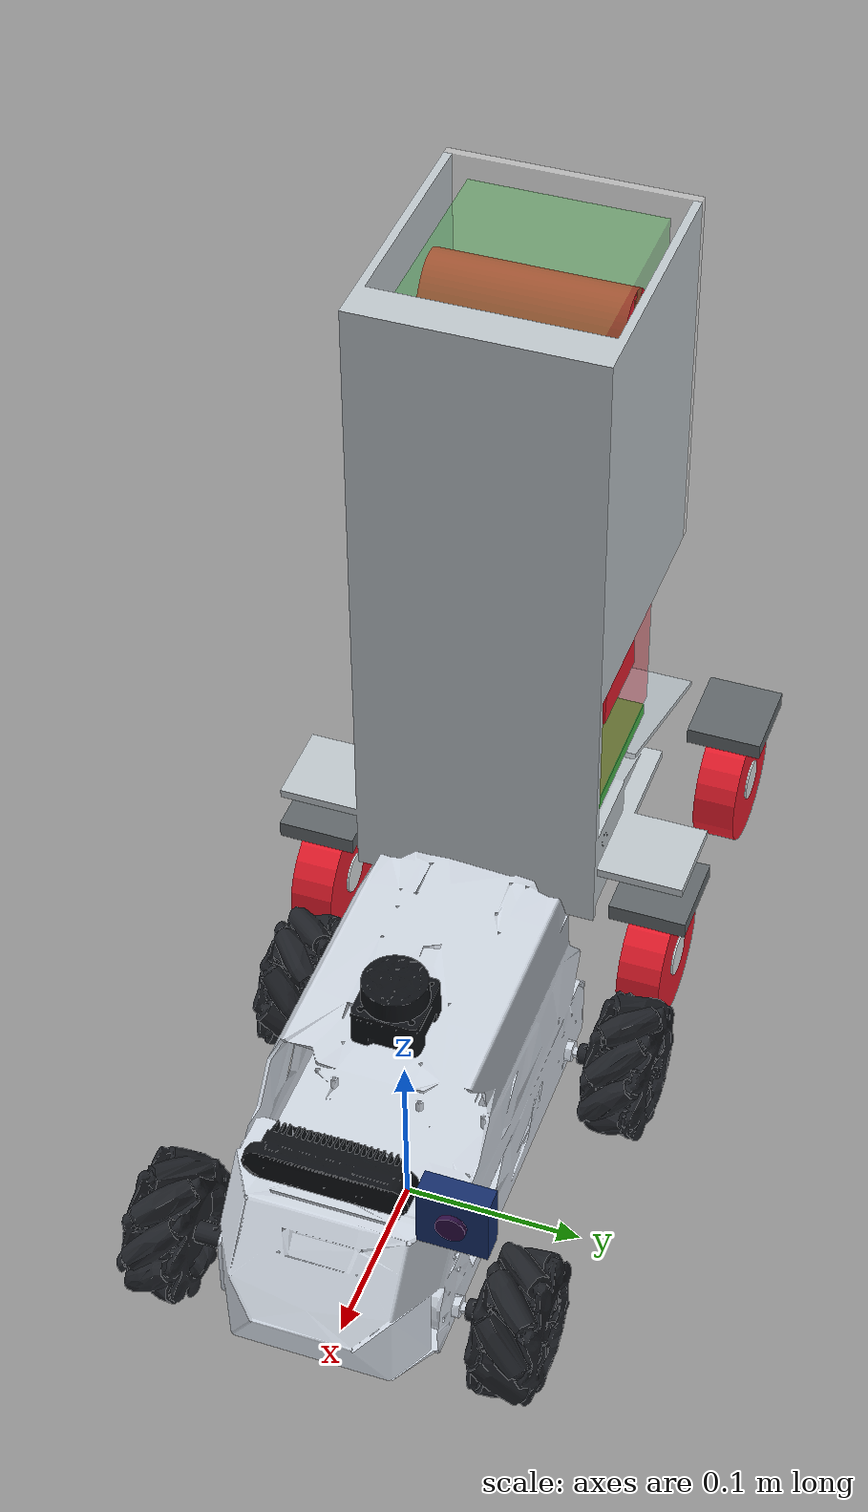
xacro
<?xml version="1.0"?>
<robot
  xmlns:xacro="http://www.ros.org/wiki/xacro"
  xmlns:ignition="http://ignitionrobotics.org/schema"
  name="hazard_guard_m1">
  <xacro:arg name="simulation_mode" default="kinematic" />
  <xacro:arg name="visualize_sensors" default="false" />
  <xacro:arg name="include_dispenser" default="true" />
  <xacro:arg name="dispenser_mass" default="1.2" />
  <xacro:arg name="thermal_width" default="160" />
  <xacro:arg name="thermal_height" default="120" />
  <xacro:arg name="thermal_update_rate" default="8.7" />
  <xacro:arg name="thermal_horizontal_fov" default="0.994837674" />
  <xacro:arg name="thermal_clip_near" default="0.05" />
  <xacro:arg name="thermal_clip_far" default="5.0" />
  <xacro:arg name="thermal_mount_x" default="0.106871" />
  <xacro:arg name="thermal_mount_y" default="0.068" />
  <xacro:arg name="thermal_mount_z" default="0.106136" />
  <xacro:arg name="thermal_mount_roll" default="0" />
  <xacro:arg name="thermal_mount_pitch" default="0" />
  <xacro:arg name="thermal_mount_yaw" default="0" />
  <xacro:arg name="thermal_optical_x" default="0.009" />
  <xacro:arg name="thermal_optical_y" default="0" />
  <xacro:arg name="thermal_optical_z" default="0" />
  <xacro:arg name="thermal_optical_roll" default="-1.57079632679" />
  <xacro:arg name="thermal_optical_pitch" default="0" />
  <xacro:arg name="thermal_optical_yaw" default="-1.57079632679" />
  <xacro:property name="simulation_mode" value="$(arg simulation_mode)" />
  <xacro:property name="visualize_sensors" value="$(arg visualize_sensors)" />
  <xacro:property name="dispenser_requested_mass" value="$(arg dispenser_mass)" />
  <xacro:property name="thermal_width" value="$(arg thermal_width)" />
  <xacro:property name="thermal_height" value="$(arg thermal_height)" />
  <xacro:property name="thermal_update_rate" value="$(arg thermal_update_rate)" />
  <xacro:property name="thermal_horizontal_fov" value="$(arg thermal_horizontal_fov)" />
  <xacro:property name="thermal_clip_near" value="$(arg thermal_clip_near)" />
  <xacro:property name="thermal_clip_far" value="$(arg thermal_clip_far)" />

  <xacro:property name="wheel_radius" value="0.0400" />
  <xacro:property name="wheel_width" value="0.0467" />
  <xacro:property name="front_wheel_x" value="0.092971" />
  <xacro:property name="rear_wheel_x" value="-0.092992" />
  <xacro:property name="left_wheel_y" value="0.08425" />
  <xacro:property name="right_wheel_y" value="-0.08425" />
  <xacro:property name="wheel_center_z" value="0.01249" />
  <xacro:property name="base_ground_offset" value="0.0276" />
  <xacro:property name="stock_mass" value="2.74" />
  <!-- Provisional TMC160B board-level mass from the current product-family
       brochure. Verify the delivered enclosure and bracket before the hardware
       dynamics baseline. -->
  <xacro:property name="thermal_mass" value="0.052" />
  <xacro:if value="$(arg include_dispenser)">
    <xacro:property
      name="installed_dispenser_mass"
      value="${dispenser_requested_mass}"
      scope="global" />
    <xacro:property
      name="installed_dispenser_yaw_inertia"
      value="${0.0951 * dispenser_requested_mass / 1.2}"
      scope="global" />
    <!-- The rear structure blocks about 71 degrees. A small edge/noise margin
         makes the simulated self-mask 77 degrees in total. -->
    <xacro:property name="lidar_samples" value="283" scope="global" />
    <xacro:property name="lidar_min_angle" value="-2.470" scope="global" />
    <xacro:property name="lidar_max_angle" value="2.470" scope="global" />
  </xacro:if>
  <xacro:unless value="$(arg include_dispenser)">
    <xacro:property name="installed_dispenser_mass" value="0.0" scope="global" />
    <xacro:property name="installed_dispenser_yaw_inertia" value="0.0" scope="global" />
    <xacro:property name="lidar_samples" value="360" scope="global" />
    <xacro:property name="lidar_min_angle" value="-3.14159265" scope="global" />
    <xacro:property name="lidar_max_angle" value="3.14159265" scope="global" />
  </xacro:unless>
  <xacro:property
    name="model_mass"
    value="${stock_mass + thermal_mass + installed_dispenser_mass}" />
  <xacro:property
    name="model_yaw_inertia"
    value="${0.0194 + installed_dispenser_yaw_inertia}" />
  <xacro:property name="base_mass" value="2.2939" />
  <xacro:property name="dispenser_body_lift" value="0.0600" />
  <xacro:property name="dispenser_caster_radius" value="0.0381" />
  <xacro:property name="dispenser_caster_width" value="0.0250" />
  <!-- Keep the sensor's real near range; the blocked rear sector is excluded
       geometrically instead of being published as a false 0.137 m obstacle. -->
  <xacro:property name="lidar_min_range" value="0.120" />

  <material name="m1_silver"><color rgba="0.82 0.85 0.89 1" /></material>
  <material name="m1_black"><color rgba="0.055 0.065 0.08 1" /></material>
  <material name="m1_wheel"><color rgba="0.12 0.13 0.15 1" /></material>
  <material name="thermal_blue"><color rgba="0.08 0.18 0.42 1" /></material>
  <material name="thermal_lens"><color rgba="0.18 0.05 0.26 1" /></material>
  <material name="dispenser_amber_translucent"><color rgba="1.0 0.866667 0.101961 0.4" /></material>
  <material name="dispenser_green_translucent"><color rgba="0.27451 0.717647 0.286275 0.4" /></material>
  <material name="dispenser_white_translucent"><color rgba="0.980392 0.980392 0.980392 0.4" /></material>
  <material name="dispenser_red_translucent"><color rgba="0.913725 0.113725 0.176471 0.4" /></material>
  <material name="dispenser_light_gray"><color rgba="0.74902 0.780392 0.8 1" /></material>
  <material name="dispenser_off_white"><color rgba="0.866667 0.886275 0.894118 1" /></material>
  <material name="dispenser_red"><color rgba="0.913725 0.113725 0.176471 1" /></material>
  <material name="dispenser_blue"><color rgba="0.0 0.623529 0.843137 1" /></material>
  <material name="dispenser_green"><color rgba="0.27451 0.717647 0.286275 1" /></material>
  <material name="dispenser_mid_gray"><color rgba="0.380392 0.403922 0.415686 1" /></material>

  <xacro:macro name="dispenser_mesh" params="name filename material">
    <visual name="${name}">
      <origin xyz="0 0 ${dispenser_body_lift}" />
      <geometry>
        <mesh filename="package://hazard_guard_simulation/meshes/yahboom_m1/${filename}" />
      </geometry>
      <material name="${material}" />
    </visual>
  </xacro:macro>

  <xacro:macro name="dispenser_caster" params="name x y">
    <visual name="${name}_wheel">
      <origin xyz="${x} ${y} ${dispenser_caster_radius - base_ground_offset}" rpy="1.57079632679 0 0" />
      <geometry>
        <cylinder radius="${dispenser_caster_radius}" length="${dispenser_caster_width}" />
      </geometry>
      <material name="dispenser_red" />
    </visual>
    <visual name="${name}_hub">
      <origin xyz="${x} ${y} ${dispenser_caster_radius - base_ground_offset}" rpy="1.57079632679 0 0" />
      <geometry><cylinder radius="0.012" length="0.027" /></geometry>
      <material name="dispenser_off_white" />
    </visual>
    <visual name="${name}_mount">
      <origin xyz="${x} ${y} ${0.086 - base_ground_offset}" />
      <geometry><box size="0.050 0.045 0.010" /></geometry>
      <material name="dispenser_mid_gray" />
    </visual>
  </xacro:macro>

  <link name="base_footprint" />
  <joint name="base_footprint_joint" type="fixed">
    <parent link="base_footprint" />
    <child link="base_link" />
    <origin xyz="0 0 ${base_ground_offset}" />
  </joint>

  <link name="base_link">
    <inertial>
      <origin xyz="0.01417 0 0.062" />
      <mass value="${base_mass}" />
      <inertia
        ixx="0.00849" ixy="0" ixz="0.00015"
        iyy="0.01795" iyz="0"
        izz="0.01938" />
    </inertial>
    <visual>
      <geometry>
        <mesh filename="package://hazard_guard_simulation/meshes/yahboom_m1/base_link.stl" />
      </geometry>
      <material name="m1_silver" />
    </visual>
    <collision name="lower_chassis_collision">
      <origin xyz="0.014 0 0.027" />
      <geometry><box size="0.2745 0.1610 0.054" /></geometry>
    </collision>
    <collision name="upper_chassis_collision">
      <origin xyz="0.018 0 0.087" />
      <geometry><box size="0.220 0.145 0.066" /></geometry>
    </collision>
  </link>

  <xacro:macro name="m1_wheel" params="prefix mesh x y mass ixx iyy izz fdir_y">
    <link name="${prefix}_wheel_link">
      <inertial>
        <origin xyz="0 ${0.0119 if y > 0 else -0.0119} 0" />
        <mass value="${mass}" />
        <inertia ixx="${ixx}" ixy="0" ixz="0" iyy="${iyy}" iyz="0" izz="${izz}" />
      </inertial>
      <visual>
        <geometry>
          <mesh filename="package://hazard_guard_simulation/meshes/yahboom_m1/${mesh}" />
        </geometry>
        <material name="m1_wheel" />
      </visual>
      <collision>
        <geometry><sphere radius="${wheel_radius}" /></geometry>
      </collision>
    </link>
    <joint name="${prefix}_wheel_joint" type="continuous">
      <parent link="base_link" />
      <child link="${prefix}_wheel_link" />
      <origin xyz="${x} ${y} ${wheel_center_z}" />
      <axis xyz="0 1 0" />
      <limit effort="10" velocity="25" />
      <dynamics damping="0.03" friction="0.01" />
    </joint>
    <gazebo reference="${prefix}_wheel_link">
      <mu1>1.0</mu1>
      <mu2>0.0</mu2>
      <fdir1 ignition:expressed_in="base_link">1 ${fdir_y} 0</fdir1>
      <kp>300000</kp>
      <kd>5</kd>
    </gazebo>
  </xacro:macro>

  <xacro:m1_wheel
    prefix="front_left" mesh="le_fr_link.stl"
    x="${front_wheel_x}" y="${left_wheel_y}"
    mass="0.1018682436" ixx="0.0000456509" iyy="0.0000754637" izz="0.0000456518"
    fdir_y="-1" />
  <xacro:m1_wheel
    prefix="rear_left" mesh="le_be_link.stl"
    x="${rear_wheel_x}" y="${left_wheel_y}"
    mass="0.1018661673" ixx="0.0000456501" iyy="0.0000754629" izz="0.0000456510"
    fdir_y="1" />
  <xacro:m1_wheel
    prefix="front_right" mesh="ri_fr_link.stl"
    x="${front_wheel_x}" y="${right_wheel_y}"
    mass="0.1018661671" ixx="0.0000456501" iyy="0.0000754629" izz="0.0000456510"
    fdir_y="1" />
  <xacro:m1_wheel
    prefix="rear_right" mesh="ri_be_link.stl"
    x="${rear_wheel_x}" y="${right_wheel_y}"
    mass="0.1018682468" ixx="0.0000456509" iyy="0.0000754637" izz="0.0000456518"
    fdir_y="-1" />

  <link name="imu_link" />
  <joint name="imu_joint" type="fixed">
    <parent link="base_link" />
    <child link="imu_link" />
    <origin xyz="-0.025 -0.034 -0.0165" />
  </joint>

  <link name="depth_camera_link">
    <inertial>
      <origin xyz="0.01578 0.00072 0.01497" />
      <mass value="0.0287355" />
      <inertia
        ixx="0.0000149500" ixy="0" ixz="0"
        iyy="0.0000018162" iyz="0"
        izz="0.0000149490" />
    </inertial>
    <visual>
      <geometry>
        <mesh filename="package://hazard_guard_simulation/meshes/yahboom_m1/camera_link.stl" />
      </geometry>
      <material name="m1_black" />
    </visual>
    <collision>
      <origin xyz="0.013 0 0.011" />
      <geometry><box size="0.030 0.090 0.029" /></geometry>
    </collision>
  </link>
  <joint name="depth_camera_joint" type="fixed">
    <parent link="base_link" />
    <child link="depth_camera_link" />
    <origin xyz="0.085871 0 0.094136" />
  </joint>
  <link name="depth_camera_optical_frame" />
  <joint name="depth_camera_optical_joint" type="fixed">
    <parent link="depth_camera_link" />
    <child link="depth_camera_optical_frame" />
    <origin xyz="0.030 0 0.012" rpy="-1.57079632679 0 -1.57079632679" />
  </joint>

  <link name="lidar_link">
    <inertial>
      <origin xyz="0 0 -0.0102" />
      <mass value="0.0099263" />
      <inertia
        ixx="0.0000019141" ixy="0" ixz="0"
        iyy="0.0000018985" iyz="0"
        izz="0.0000033333" />
    </inertial>
    <visual>
      <geometry>
        <mesh filename="package://hazard_guard_simulation/meshes/yahboom_m1/laser_link.stl" />
      </geometry>
      <material name="m1_black" />
    </visual>
    <collision>
      <origin xyz="0 0 -0.0102" />
      <geometry><cylinder radius="0.0194" length="0.0341" /></geometry>
    </collision>
  </link>
  <joint name="lidar_joint" type="fixed">
    <parent link="base_link" />
    <child link="lidar_link" />
    <origin xyz="0.010059 0 0.14712" />
  </joint>

  <link name="thermal_camera_link">
    <inertial>
      <mass value="${thermal_mass}" />
      <inertia
        ixx="0.0000125147" ixy="0" ixz="0"
        iyy="0.0000071067" iyz="0"
        izz="0.0000071067" />
    </inertial>
    <visual>
      <geometry><box size="0.014 0.038 0.038" /></geometry>
      <material name="thermal_blue" />
    </visual>
    <visual name="thermal_lens_visual">
      <origin xyz="0.008 0 0" rpy="0 1.57079632679 0" />
      <geometry><cylinder radius="0.008" length="0.004" /></geometry>
      <material name="thermal_lens" />
    </visual>
    <collision>
      <geometry><box size="0.014 0.038 0.038" /></geometry>
    </collision>
  </link>
  <joint name="thermal_camera_joint" type="fixed">
    <parent link="base_link" />
    <child link="thermal_camera_link" />
    <origin
      xyz="$(arg thermal_mount_x) $(arg thermal_mount_y) $(arg thermal_mount_z)"
      rpy="$(arg thermal_mount_roll) $(arg thermal_mount_pitch) $(arg thermal_mount_yaw)" />
  </joint>
  <link name="thermal_camera_optical_frame" />
  <joint name="thermal_camera_optical_joint" type="fixed">
    <parent link="thermal_camera_link" />
    <child link="thermal_camera_optical_frame" />
    <origin
      xyz="$(arg thermal_optical_x) $(arg thermal_optical_y) $(arg thermal_optical_z)"
      rpy="$(arg thermal_optical_roll) $(arg thermal_optical_pitch) $(arg thermal_optical_yaw)" />
  </joint>

  <xacro:if value="$(arg include_dispenser)">
    <link name="dispenser_link">
      <inertial>
        <origin xyz="-0.262755 -0.0143 0.242465" />
        <mass value="${dispenser_requested_mass}" />
        <inertia
          ixx="${0.023411 * dispenser_requested_mass / 1.2}" ixy="0" ixz="0"
          iyy="${0.023901 * dispenser_requested_mass / 1.2}" iyz="0"
          izz="${0.012010 * dispenser_requested_mass / 1.2}" />
      </inertial>
      <xacro:dispenser_mesh
        name="dispenser_light_gray_visual"
        filename="dispenser_light_gray.stl"
        material="dispenser_light_gray" />
      <xacro:dispenser_mesh
        name="dispenser_off_white_visual"
        filename="dispenser_off_white.stl"
        material="dispenser_off_white" />
      <xacro:dispenser_mesh
        name="dispenser_red_visual"
        filename="dispenser_red.stl"
        material="dispenser_red" />
      <xacro:dispenser_mesh
        name="dispenser_blue_visual"
        filename="dispenser_blue.stl"
        material="dispenser_blue" />
      <xacro:dispenser_mesh
        name="dispenser_green_visual"
        filename="dispenser_green.stl"
        material="dispenser_green" />
      <xacro:dispenser_mesh
        name="dispenser_mid_gray_visual"
        filename="dispenser_mid_gray.stl"
        material="dispenser_mid_gray" />
      <xacro:dispenser_mesh
        name="dispenser_red_translucent_visual"
        filename="dispenser_red_translucent.stl"
        material="dispenser_red_translucent" />
      <xacro:dispenser_mesh
        name="dispenser_white_translucent_visual"
        filename="dispenser_white_translucent.stl"
        material="dispenser_white_translucent" />
      <xacro:dispenser_mesh
        name="dispenser_green_translucent_visual"
        filename="dispenser_green_translucent.stl"
        material="dispenser_green_translucent" />
      <xacro:dispenser_mesh
        name="dispenser_amber_translucent_visual"
        filename="dispenser_amber_translucent.stl"
        material="dispenser_amber_translucent" />
      <xacro:dispenser_caster name="rear_left_caster" x="-0.340" y="0.0857" />
      <xacro:dispenser_caster name="rear_right_caster" x="-0.340" y="-0.1143" />
      <xacro:dispenser_caster name="front_left_caster" x="-0.185" y="0.0857" />
      <xacro:dispenser_caster name="front_right_caster" x="-0.185" y="-0.1143" />
      <collision name="dispenser_lower_collision">
        <origin xyz="-0.262755 -0.0143 ${0.090 - base_ground_offset}" />
        <geometry><box size="0.250 0.240 0.060" /></geometry>
      </collision>
      <collision name="dispenser_body_collision">
        <origin xyz="-0.262755 -0.0143 ${0.300 - base_ground_offset}" />
        <geometry><box size="0.230 0.220 0.360" /></geometry>
      </collision>
    </link>
    <joint name="dispenser_joint" type="fixed">
      <parent link="base_link" />
      <child link="dispenser_link" />
      <origin xyz="0 0 0" />
    </joint>
    <gazebo reference="dispenser_link">
      <selfCollide>false</selfCollide>
      <mu1>0.01</mu1>
      <mu2>0.01</mu2>
      <slip1>1.0</slip1>
      <slip2>1.0</slip2>
    </gazebo>
  </xacro:if>

  <gazebo reference="base_link">
    <selfCollide>false</selfCollide>
  </gazebo>

  <gazebo reference="lidar_link">
    <sensor name="hazard_guard_lidar" type="gpu_lidar">
      <always_on>true</always_on>
      <update_rate>10</update_rate>
      <visualize>${visualize_sensors}</visualize>
      <topic>/scan</topic>
      <gz_frame_id>lidar_link</gz_frame_id>
      <lidar>
        <scan>
          <horizontal>
            <samples>${lidar_samples}</samples>
            <resolution>1</resolution>
            <min_angle>${lidar_min_angle}</min_angle>
            <max_angle>${lidar_max_angle}</max_angle>
          </horizontal>
        </scan>
        <range><min>${lidar_min_range}</min><max>12.0</max><resolution>0.01</resolution></range>
        <noise><type>gaussian</type><mean>0.0</mean><stddev>0.01</stddev></noise>
      </lidar>
    </sensor>
  </gazebo>

  <gazebo reference="imu_link">
    <sensor name="hazard_guard_imu" type="imu">
      <always_on>true</always_on>
      <update_rate>50</update_rate>
      <visualize>false</visualize>
      <topic>/imu/data_raw</topic>
      <gz_frame_id>imu_link</gz_frame_id>
    </sensor>
  </gazebo>

  <gazebo reference="depth_camera_link">
    <sensor name="hazard_guard_rgb_camera" type="camera">
      <always_on>true</always_on>
      <update_rate>10</update_rate>
      <visualize>${visualize_sensors}</visualize>
      <topic>/camera/image</topic>
      <gz_frame_id>depth_camera_optical_frame</gz_frame_id>
      <camera name="front_camera">
        <camera_info_topic>/camera/camera_info</camera_info_topic>
        <horizontal_fov>1.288053</horizontal_fov>
        <image><width>640</width><height>480</height><format>R8G8B8</format></image>
        <clip><near>0.08</near><far>30.0</far></clip>
        <noise><type>gaussian</type><mean>0.0</mean><stddev>0.004</stddev></noise>
      </camera>
    </sensor>
    <sensor name="hazard_guard_depth_camera" type="depth_camera">
      <always_on>true</always_on>
      <update_rate>10</update_rate>
      <visualize>${visualize_sensors}</visualize>
      <topic>/depth_camera/image</topic>
      <gz_frame_id>depth_camera_optical_frame</gz_frame_id>
      <camera name="depth_camera">
        <camera_info_topic>/depth_camera/camera_info</camera_info_topic>
        <horizontal_fov>1.288053</horizontal_fov>
        <image><width>640</width><height>480</height><format>R8G8B8</format></image>
        <clip><near>0.2</near><far>4.0</far></clip>
        <noise><type>gaussian</type><mean>0.0</mean><stddev>0.003</stddev></noise>
      </camera>
    </sensor>
  </gazebo>

  <gazebo reference="thermal_camera_link">
    <sensor name="hazard_guard_thermal_camera" type="thermal_camera">
      <always_on>true</always_on>
      <update_rate>${thermal_update_rate}</update_rate>
      <visualize>${visualize_sensors}</visualize>
      <topic>/thermal_camera/image</topic>
      <gz_frame_id>thermal_camera_optical_frame</gz_frame_id>
      <camera name="thermal_camera">
        <camera_info_topic>/thermal_camera/camera_info</camera_info_topic>
        <horizontal_fov>${thermal_horizontal_fov}</horizontal_fov>
        <image><width>${thermal_width}</width><height>${thermal_height}</height><format>L_INT16</format></image>
        <clip><near>${thermal_clip_near}</near><far>${thermal_clip_far}</far></clip>
      </camera>
    </sensor>
  </gazebo>

  <xacro:if value="${simulation_mode == 'kinematic'}">
    <gazebo>
      <plugin
        name="ignition::gazebo::systems::VelocityControl"
        filename="ignition-gazebo-velocity-control-system">
        <topic>/cmd_vel</topic>
      </plugin>
    </gazebo>
  </xacro:if>

  <xacro:if value="${simulation_mode == 'physics'}">
    <gazebo>
      <!--
        Physical wheel-contact mode. This is retained for traction and
        roller-friction experiments; Nav2 defaults to the stable mode above.
      -->
      <plugin
        name="ignition::gazebo::systems::MecanumDrive"
        filename="ignition-gazebo-mecanum-drive-system">
        <front_left_joint>front_left_wheel_joint</front_left_joint>
        <front_right_joint>front_right_wheel_joint</front_right_joint>
        <back_left_joint>rear_left_wheel_joint</back_left_joint>
        <back_right_joint>rear_right_wheel_joint</back_right_joint>
        <wheelbase>0.185963</wheelbase>
        <wheel_separation>0.1685</wheel_separation>
        <wheel_radius>${wheel_radius}</wheel_radius>
        <topic>/cmd_vel</topic>
        <odom_topic>/wheel_odom</odom_topic>
        <tf_topic>/wheel_tf</tf_topic>
        <frame_id>odom</frame_id>
        <child_frame_id>base_footprint</child_frame_id>
        <odom_publish_frequency>30</odom_publish_frequency>
      </plugin>
    </gazebo>
  </xacro:if>

  <gazebo>
    <plugin
      name="ignition::gazebo::systems::OdometryPublisher"
      filename="ignition-gazebo-odometry-publisher-system">
      <odom_frame>odom</odom_frame>
      <robot_base_frame>base_footprint</robot_base_frame>
      <odom_topic>/odom</odom_topic>
      <tf_topic>/tf</tf_topic>
      <odom_publish_frequency>30</odom_publish_frequency>
      <dimensions>2</dimensions>
      <gaussian_noise>0.001</gaussian_noise>
    </plugin>
    <plugin
      name="ignition::gazebo::systems::JointStatePublisher"
      filename="ignition-gazebo-joint-state-publisher-system">
      <topic>/joint_states</topic>
    </plugin>
  </gazebo>
</robot>
